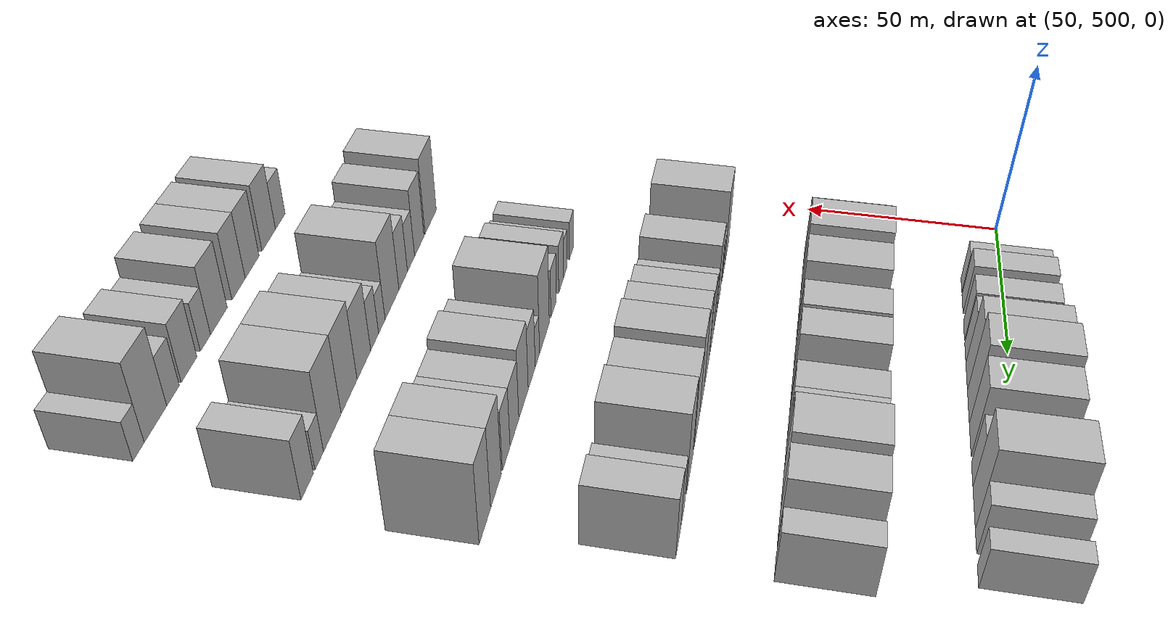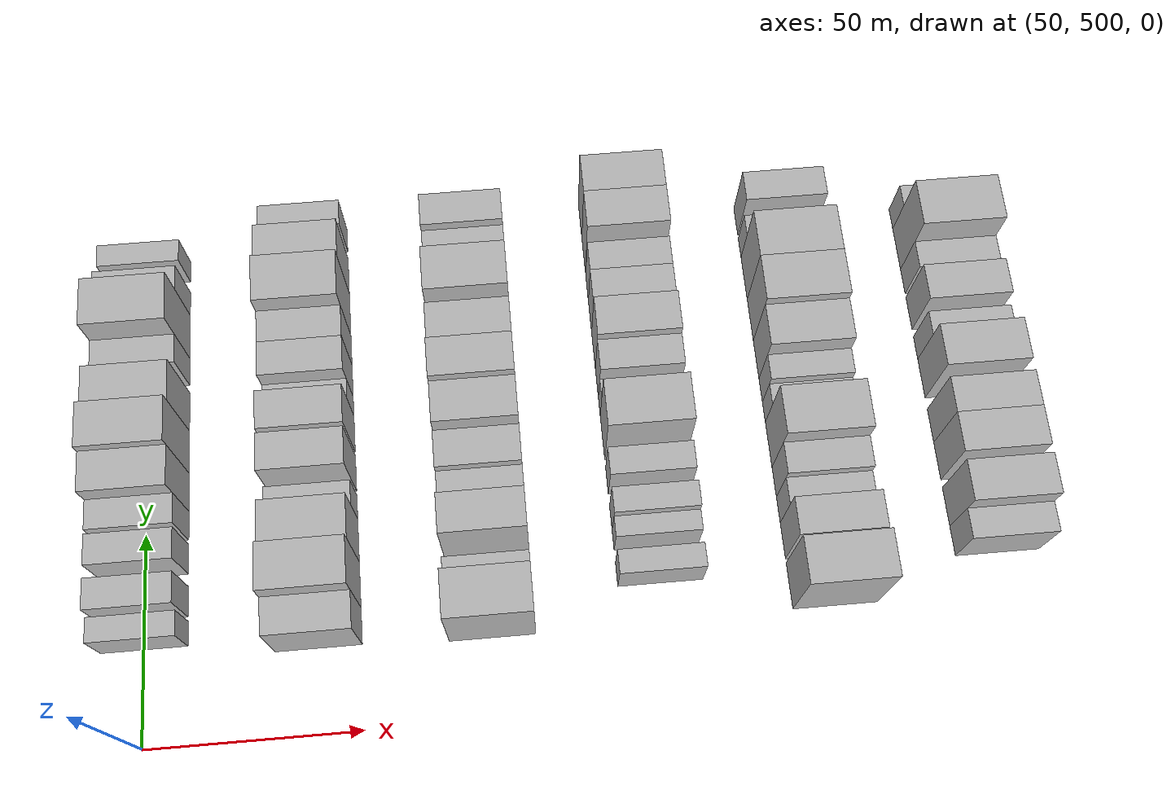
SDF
<sdf version="1.6">
 <world name="default">
  <model name="building_120">
   <static>1</static>
   <pose>50.0000 525.6360 0 0.000000 0.000000 0.000000</pose>
   <link name="link">
    <pose>0 0 6.00 0 0 0</pose>
    <collision name="collision"><geometry><box><size>20.0000 5.7998 12.0000</size></box></geometry></collision>
    <visual name="visual">
     <cast_shadows>0</cast_shadows>
     <geometry><box><size>20.0000 5.7998 12.0000</size></box></geometry>
     <material>
      <script>
       <uri>model://HANNAS_wall/materials/scripts</uri>
       <uri>model://HANNAS_wall/materials/textures</uri>
       <name>vrc/HANNAS_wall</name>
      </script>
     </material>
    </visual>
   </link>
  </model>
  <model name="building_121">
   <static>1</static>
   <pose>50.0000 533.1571 0 0.000000 0.000000 0.000000</pose>
   <link name="link">
    <pose>0 0 7.50 0 0 0</pose>
    <collision name="collision"><geometry><box><size>20.0000 7.2424 15.0000</size></box></geometry></collision>
    <visual name="visual">
     <cast_shadows>0</cast_shadows>
     <geometry><box><size>20.0000 7.2424 15.0000</size></box></geometry>
     <material>
      <script>
       <uri>model://HANNAS_wall/materials/scripts</uri>
       <uri>model://HANNAS_wall/materials/textures</uri>
       <name>vrc/HANNAS_wall</name>
      </script>
     </material>
    </visual>
   </link>
  </model>
  <model name="building_122">
   <static>1</static>
   <pose>50.0000 543.4093 0 0.000000 0.000000 0.000000</pose>
   <link name="link">
    <pose>0 0 7.50 0 0 0</pose>
    <collision name="collision"><geometry><box><size>20.0000 7.2619 15.0000</size></box></geometry></collision>
    <visual name="visual">
     <cast_shadows>0</cast_shadows>
     <geometry><box><size>20.0000 7.2619 15.0000</size></box></geometry>
     <material>
      <script>
       <uri>model://HANNAS_wall/materials/scripts</uri>
       <uri>model://HANNAS_wall/materials/textures</uri>
       <name>vrc/HANNAS_wall</name>
      </script>
     </material>
    </visual>
   </link>
  </model>
  <model name="building_123">
   <static>1</static>
   <pose>50.0000 551.6006 0 0.000000 0.000000 0.000000</pose>
   <link name="link">
    <pose>0 0 7.50 0 0 0</pose>
    <collision name="collision"><geometry><box><size>20.0000 7.1207 15.0000</size></box></geometry></collision>
    <visual name="visual">
     <cast_shadows>0</cast_shadows>
     <geometry><box><size>20.0000 7.1207 15.0000</size></box></geometry>
     <material>
      <script>
       <uri>model://HANNAS_wall/materials/scripts</uri>
       <uri>model://HANNAS_wall/materials/textures</uri>
       <name>vrc/HANNAS_wall</name>
      </script>
     </material>
    </visual>
   </link>
  </model>
  <model name="building_124">
   <static>1</static>
   <pose>50.0000 559.9631 0 0.000000 0.000000 0.000000</pose>
   <link name="link">
    <pose>0 0 10.50 0 0 0</pose>
    <collision name="collision"><geometry><box><size>20.0000 9.6043 21.0000</size></box></geometry></collision>
    <visual name="visual">
     <cast_shadows>0</cast_shadows>
     <geometry><box><size>20.0000 9.6043 21.0000</size></box></geometry>
     <material>
      <script>
       <uri>model://HANNAS_wall/materials/scripts</uri>
       <uri>model://HANNAS_wall/materials/textures</uri>
       <name>vrc/HANNAS_wall</name>
      </script>
     </material>
    </visual>
   </link>
  </model>
  <model name="building_125">
   <static>1</static>
   <pose>50.0000 570.2019 0 0.000000 0.000000 0.000000</pose>
   <link name="link">
    <pose>0 0 12.00 0 0 0</pose>
    <collision name="collision"><geometry><box><size>20.0000 10.8734 24.0000</size></box></geometry></collision>
    <visual name="visual">
     <cast_shadows>0</cast_shadows>
     <geometry><box><size>20.0000 10.8734 24.0000</size></box></geometry>
     <material>
      <script>
       <uri>model://HANNAS_wall/materials/scripts</uri>
       <uri>model://HANNAS_wall/materials/textures</uri>
       <name>vrc/HANNAS_wall</name>
      </script>
     </material>
    </visual>
   </link>
  </model>
  <model name="building_126">
   <static>1</static>
   <pose>50.0000 580.6736 0 0.000000 0.000000 0.000000</pose>
   <link name="link">
    <pose>0 0 10.50 0 0 0</pose>
    <collision name="collision"><geometry><box><size>20.0000 10.0700 21.0000</size></box></geometry></collision>
    <visual name="visual">
     <cast_shadows>0</cast_shadows>
     <geometry><box><size>20.0000 10.0700 21.0000</size></box></geometry>
     <material>
      <script>
       <uri>model://HANNAS_wall/materials/scripts</uri>
       <uri>model://HANNAS_wall/materials/textures</uri>
       <name>vrc/HANNAS_wall</name>
      </script>
     </material>
    </visual>
   </link>
  </model>
  <model name="building_127">
   <static>1</static>
   <pose>50.0000 591.2926 0 0.000000 0.000000 0.000000</pose>
   <link name="link">
    <pose>0 0 7.50 0 0 0</pose>
    <collision name="collision"><geometry><box><size>20.0000 7.1679 15.0000</size></box></geometry></collision>
    <visual name="visual">
     <cast_shadows>0</cast_shadows>
     <geometry><box><size>20.0000 7.1679 15.0000</size></box></geometry>
     <material>
      <script>
       <uri>model://HANNAS_wall/materials/scripts</uri>
       <uri>model://HANNAS_wall/materials/textures</uri>
       <name>vrc/HANNAS_wall</name>
      </script>
     </material>
    </visual>
   </link>
  </model>
  <model name="building_128">
   <static>1</static>
   <pose>50.0000 600.7836 0 0.000000 0.000000 0.000000</pose>
   <link name="link">
    <pose>0 0 12.00 0 0 0</pose>
    <collision name="collision"><geometry><box><size>20.0000 11.8140 24.0000</size></box></geometry></collision>
    <visual name="visual">
     <cast_shadows>0</cast_shadows>
     <geometry><box><size>20.0000 11.8140 24.0000</size></box></geometry>
     <material>
      <script>
       <uri>model://HANNAS_wall/materials/scripts</uri>
       <uri>model://HANNAS_wall/materials/textures</uri>
       <name>vrc/HANNAS_wall</name>
      </script>
     </material>
    </visual>
   </link>
  </model>
  <model name="building_129">
   <static>1</static>
   <pose>50.0000 609.8811 0 0.000000 0.000000 0.000000</pose>
   <link name="link">
    <pose>0 0 7.50 0 0 0</pose>
    <collision name="collision"><geometry><box><size>20.0000 6.3809 15.0000</size></box></geometry></collision>
    <visual name="visual">
     <cast_shadows>0</cast_shadows>
     <geometry><box><size>20.0000 6.3809 15.0000</size></box></geometry>
     <material>
      <script>
       <uri>model://HANNAS_wall/materials/scripts</uri>
       <uri>model://HANNAS_wall/materials/textures</uri>
       <name>vrc/HANNAS_wall</name>
      </script>
     </material>
    </visual>
   </link>
  </model>
  <model name="building_130">
   <static>1</static>
   <pose>50.0000 618.9133 0 0.000000 0.000000 0.000000</pose>
   <link name="link">
    <pose>0 0 6.00 0 0 0</pose>
    <collision name="collision"><geometry><box><size>20.0000 5.6835 12.0000</size></box></geometry></collision>
    <visual name="visual">
     <cast_shadows>0</cast_shadows>
     <geometry><box><size>20.0000 5.6835 12.0000</size></box></geometry>
     <material>
      <script>
       <uri>model://HANNAS_wall/materials/scripts</uri>
       <uri>model://HANNAS_wall/materials/textures</uri>
       <name>vrc/HANNAS_wall</name>
      </script>
     </material>
    </visual>
   </link>
  </model>
  <model name="building_257">
   <static>1</static>
   <pose>90.0000 524.0116 0 0.000000 0.000000 0.000000</pose>
   <link name="link">
    <pose>0 0 9.00 0 0 0</pose>
    <collision name="collision"><geometry><box><size>20.0000 8.6632 18.0000</size></box></geometry></collision>
    <visual name="visual">
     <cast_shadows>0</cast_shadows>
     <geometry><box><size>20.0000 8.6632 18.0000</size></box></geometry>
     <material>
      <script>
       <uri>model://HANNAS_wall/materials/scripts</uri>
       <uri>model://HANNAS_wall/materials/textures</uri>
       <name>vrc/HANNAS_wall</name>
      </script>
     </material>
    </visual>
   </link>
  </model>
  <model name="building_258">
   <static>1</static>
   <pose>90.0000 533.8277 0 0.000000 0.000000 0.000000</pose>
   <link name="link">
    <pose>0 0 12.00 0 0 0</pose>
    <collision name="collision"><geometry><box><size>20.0000 10.9690 24.0000</size></box></geometry></collision>
    <visual name="visual">
     <cast_shadows>0</cast_shadows>
     <geometry><box><size>20.0000 10.9690 24.0000</size></box></geometry>
     <material>
      <script>
       <uri>model://HANNAS_wall/materials/scripts</uri>
       <uri>model://HANNAS_wall/materials/textures</uri>
       <name>vrc/HANNAS_wall</name>
      </script>
     </material>
    </visual>
   </link>
  </model>
  <model name="building_259">
   <static>1</static>
   <pose>90.0000 544.5603 0 0.000000 0.000000 0.000000</pose>
   <link name="link">
    <pose>0 0 10.50 0 0 0</pose>
    <collision name="collision"><geometry><box><size>20.0000 10.4961 21.0000</size></box></geometry></collision>
    <visual name="visual">
     <cast_shadows>0</cast_shadows>
     <geometry><box><size>20.0000 10.4961 21.0000</size></box></geometry>
     <material>
      <script>
       <uri>model://HANNAS_wall/materials/scripts</uri>
       <uri>model://HANNAS_wall/materials/textures</uri>
       <name>vrc/HANNAS_wall</name>
      </script>
     </material>
    </visual>
   </link>
  </model>
  <model name="building_260">
   <static>1</static>
   <pose>90.0000 552.7948 0 0.000000 0.000000 0.000000</pose>
   <link name="link">
    <pose>0 0 6.00 0 0 0</pose>
    <collision name="collision"><geometry><box><size>20.0000 5.9730 12.0000</size></box></geometry></collision>
    <visual name="visual">
     <cast_shadows>0</cast_shadows>
     <geometry><box><size>20.0000 5.9730 12.0000</size></box></geometry>
     <material>
      <script>
       <uri>model://HANNAS_wall/materials/scripts</uri>
       <uri>model://HANNAS_wall/materials/textures</uri>
       <name>vrc/HANNAS_wall</name>
      </script>
     </material>
    </visual>
   </link>
  </model>
  <model name="building_261">
   <static>1</static>
   <pose>90.0000 561.2911 0 0.000000 0.000000 0.000000</pose>
   <link name="link">
    <pose>0 0 10.50 0 0 0</pose>
    <collision name="collision"><geometry><box><size>20.0000 9.0195 21.0000</size></box></geometry></collision>
    <visual name="visual">
     <cast_shadows>0</cast_shadows>
     <geometry><box><size>20.0000 9.0195 21.0000</size></box></geometry>
     <material>
      <script>
       <uri>model://HANNAS_wall/materials/scripts</uri>
       <uri>model://HANNAS_wall/materials/textures</uri>
       <name>vrc/HANNAS_wall</name>
      </script>
     </material>
    </visual>
   </link>
  </model>
  <model name="building_262">
   <static>1</static>
   <pose>90.0000 571.4587 0 0.000000 0.000000 0.000000</pose>
   <link name="link">
    <pose>0 0 10.50 0 0 0</pose>
    <collision name="collision"><geometry><box><size>20.0000 9.3157 21.0000</size></box></geometry></collision>
    <visual name="visual">
     <cast_shadows>0</cast_shadows>
     <geometry><box><size>20.0000 9.3157 21.0000</size></box></geometry>
     <material>
      <script>
       <uri>model://HANNAS_wall/materials/scripts</uri>
       <uri>model://HANNAS_wall/materials/textures</uri>
       <name>vrc/HANNAS_wall</name>
      </script>
     </material>
    </visual>
   </link>
  </model>
  <model name="building_263">
   <static>1</static>
   <pose>90.0000 578.6727 0 0.000000 0.000000 0.000000</pose>
   <link name="link">
    <pose>0 0 6.00 0 0 0</pose>
    <collision name="collision"><geometry><box><size>20.0000 5.1123 12.0000</size></box></geometry></collision>
    <visual name="visual">
     <cast_shadows>0</cast_shadows>
     <geometry><box><size>20.0000 5.1123 12.0000</size></box></geometry>
     <material>
      <script>
       <uri>model://HANNAS_wall/materials/scripts</uri>
       <uri>model://HANNAS_wall/materials/textures</uri>
       <name>vrc/HANNAS_wall</name>
      </script>
     </material>
    </visual>
   </link>
  </model>
  <model name="building_264">
   <static>1</static>
   <pose>90.0000 585.4815 0 0.000000 0.000000 0.000000</pose>
   <link name="link">
    <pose>0 0 9.00 0 0 0</pose>
    <collision name="collision"><geometry><box><size>20.0000 8.5053 18.0000</size></box></geometry></collision>
    <visual name="visual">
     <cast_shadows>0</cast_shadows>
     <geometry><box><size>20.0000 8.5053 18.0000</size></box></geometry>
     <material>
      <script>
       <uri>model://HANNAS_wall/materials/scripts</uri>
       <uri>model://HANNAS_wall/materials/textures</uri>
       <name>vrc/HANNAS_wall</name>
      </script>
     </material>
    </visual>
   </link>
  </model>
  <model name="building_265">
   <static>1</static>
   <pose>90.0000 593.7122 0 0.000000 0.000000 0.000000</pose>
   <link name="link">
    <pose>0 0 9.00 0 0 0</pose>
    <collision name="collision"><geometry><box><size>20.0000 7.9563 18.0000</size></box></geometry></collision>
    <visual name="visual">
     <cast_shadows>0</cast_shadows>
     <geometry><box><size>20.0000 7.9563 18.0000</size></box></geometry>
     <material>
      <script>
       <uri>model://HANNAS_wall/materials/scripts</uri>
       <uri>model://HANNAS_wall/materials/textures</uri>
       <name>vrc/HANNAS_wall</name>
      </script>
     </material>
    </visual>
   </link>
  </model>
  <model name="building_266">
   <static>1</static>
   <pose>90.0000 603.5068 0 0.000000 0.000000 0.000000</pose>
   <link name="link">
    <pose>0 0 12.00 0 0 0</pose>
    <collision name="collision"><geometry><box><size>20.0000 11.6327 24.0000</size></box></geometry></collision>
    <visual name="visual">
     <cast_shadows>0</cast_shadows>
     <geometry><box><size>20.0000 11.6327 24.0000</size></box></geometry>
     <material>
      <script>
       <uri>model://HANNAS_wall/materials/scripts</uri>
       <uri>model://HANNAS_wall/materials/textures</uri>
       <name>vrc/HANNAS_wall</name>
      </script>
     </material>
    </visual>
   </link>
  </model>
  <model name="building_267">
   <static>1</static>
   <pose>90.0000 614.2384 0 0.000000 0.000000 0.000000</pose>
   <link name="link">
    <pose>0 0 10.50 0 0 0</pose>
    <collision name="collision"><geometry><box><size>20.0000 9.8306 21.0000</size></box></geometry></collision>
    <visual name="visual">
     <cast_shadows>0</cast_shadows>
     <geometry><box><size>20.0000 9.8306 21.0000</size></box></geometry>
     <material>
      <script>
       <uri>model://HANNAS_wall/materials/scripts</uri>
       <uri>model://HANNAS_wall/materials/textures</uri>
       <name>vrc/HANNAS_wall</name>
      </script>
     </material>
    </visual>
   </link>
  </model>
  <model name="building_268">
   <static>1</static>
   <pose>90.0000 624.4491 0 0.000000 0.000000 0.000000</pose>
   <link name="link">
    <pose>0 0 7.50 0 0 0</pose>
    <collision name="collision"><geometry><box><size>20.0000 6.5906 15.0000</size></box></geometry></collision>
    <visual name="visual">
     <cast_shadows>0</cast_shadows>
     <geometry><box><size>20.0000 6.5906 15.0000</size></box></geometry>
     <material>
      <script>
       <uri>model://HANNAS_wall/materials/scripts</uri>
       <uri>model://HANNAS_wall/materials/textures</uri>
       <name>vrc/HANNAS_wall</name>
      </script>
     </material>
    </visual>
   </link>
  </model>
  <model name="building_398">
   <static>1</static>
   <pose>130.0000 524.2824 0 0.000000 0.000000 0.000000</pose>
   <link name="link">
    <pose>0 0 12.00 0 0 0</pose>
    <collision name="collision"><geometry><box><size>20.0000 11.1559 24.0000</size></box></geometry></collision>
    <visual name="visual">
     <cast_shadows>0</cast_shadows>
     <geometry><box><size>20.0000 11.1559 24.0000</size></box></geometry>
     <material>
      <script>
       <uri>model://HANNAS_wall/materials/scripts</uri>
       <uri>model://HANNAS_wall/materials/textures</uri>
       <name>vrc/HANNAS_wall</name>
      </script>
     </material>
    </visual>
   </link>
  </model>
  <model name="building_399">
   <static>1</static>
   <pose>130.0000 532.7590 0 0.000000 0.000000 0.000000</pose>
   <link name="link">
    <pose>0 0 6.00 0 0 0</pose>
    <collision name="collision"><geometry><box><size>20.0000 5.7972 12.0000</size></box></geometry></collision>
    <visual name="visual">
     <cast_shadows>0</cast_shadows>
     <geometry><box><size>20.0000 5.7972 12.0000</size></box></geometry>
     <material>
      <script>
       <uri>model://HANNAS_wall/materials/scripts</uri>
       <uri>model://HANNAS_wall/materials/textures</uri>
       <name>vrc/HANNAS_wall</name>
      </script>
     </material>
    </visual>
   </link>
  </model>
  <model name="building_400">
   <static>1</static>
   <pose>130.0000 543.3756 0 0.000000 0.000000 0.000000</pose>
   <link name="link">
    <pose>0 0 10.50 0 0 0</pose>
    <collision name="collision"><geometry><box><size>20.0000 9.4361 21.0000</size></box></geometry></collision>
    <visual name="visual">
     <cast_shadows>0</cast_shadows>
     <geometry><box><size>20.0000 9.4361 21.0000</size></box></geometry>
     <material>
      <script>
       <uri>model://HANNAS_wall/materials/scripts</uri>
       <uri>model://HANNAS_wall/materials/textures</uri>
       <name>vrc/HANNAS_wall</name>
      </script>
     </material>
    </visual>
   </link>
  </model>
  <model name="building_401">
   <static>1</static>
   <pose>130.0000 552.1238 0 0.000000 0.000000 0.000000</pose>
   <link name="link">
    <pose>0 0 7.50 0 0 0</pose>
    <collision name="collision"><geometry><box><size>20.0000 6.0603 15.0000</size></box></geometry></collision>
    <visual name="visual">
     <cast_shadows>0</cast_shadows>
     <geometry><box><size>20.0000 6.0603 15.0000</size></box></geometry>
     <material>
      <script>
       <uri>model://HANNAS_wall/materials/scripts</uri>
       <uri>model://HANNAS_wall/materials/textures</uri>
       <name>vrc/HANNAS_wall</name>
      </script>
     </material>
    </visual>
   </link>
  </model>
  <model name="building_402">
   <static>1</static>
   <pose>130.0000 559.5986 0 0.000000 0.000000 0.000000</pose>
   <link name="link">
    <pose>0 0 9.00 0 0 0</pose>
    <collision name="collision"><geometry><box><size>20.0000 8.8893 18.0000</size></box></geometry></collision>
    <visual name="visual">
     <cast_shadows>0</cast_shadows>
     <geometry><box><size>20.0000 8.8893 18.0000</size></box></geometry>
     <material>
      <script>
       <uri>model://HANNAS_wall/materials/scripts</uri>
       <uri>model://HANNAS_wall/materials/textures</uri>
       <name>vrc/HANNAS_wall</name>
      </script>
     </material>
    </visual>
   </link>
  </model>
  <model name="building_403">
   <static>1</static>
   <pose>130.0000 570.0678 0 0.000000 0.000000 0.000000</pose>
   <link name="link">
    <pose>0 0 10.50 0 0 0</pose>
    <collision name="collision"><geometry><box><size>20.0000 10.0492 21.0000</size></box></geometry></collision>
    <visual name="visual">
     <cast_shadows>0</cast_shadows>
     <geometry><box><size>20.0000 10.0492 21.0000</size></box></geometry>
     <material>
      <script>
       <uri>model://HANNAS_wall/materials/scripts</uri>
       <uri>model://HANNAS_wall/materials/textures</uri>
       <name>vrc/HANNAS_wall</name>
      </script>
     </material>
    </visual>
   </link>
  </model>
  <model name="building_404">
   <static>1</static>
   <pose>130.0000 579.9050 0 0.000000 0.000000 0.000000</pose>
   <link name="link">
    <pose>0 0 12.00 0 0 0</pose>
    <collision name="collision"><geometry><box><size>20.0000 9.6251 24.0000</size></box></geometry></collision>
    <visual name="visual">
     <cast_shadows>0</cast_shadows>
     <geometry><box><size>20.0000 9.6251 24.0000</size></box></geometry>
     <material>
      <script>
       <uri>model://HANNAS_wall/materials/scripts</uri>
       <uri>model://HANNAS_wall/materials/textures</uri>
       <name>vrc/HANNAS_wall</name>
      </script>
     </material>
    </visual>
   </link>
  </model>
  <model name="building_405">
   <static>1</static>
   <pose>130.0000 589.9073 0 0.000000 0.000000 0.000000</pose>
   <link name="link">
    <pose>0 0 10.50 0 0 0</pose>
    <collision name="collision"><geometry><box><size>20.0000 10.3795 21.0000</size></box></geometry></collision>
    <visual name="visual">
     <cast_shadows>0</cast_shadows>
     <geometry><box><size>20.0000 10.3795 21.0000</size></box></geometry>
     <material>
      <script>
       <uri>model://HANNAS_wall/materials/scripts</uri>
       <uri>model://HANNAS_wall/materials/textures</uri>
       <name>vrc/HANNAS_wall</name>
      </script>
     </material>
    </visual>
   </link>
  </model>
  <model name="building_406">
   <static>1</static>
   <pose>130.0000 602.7180 0 0.000000 0.000000 0.000000</pose>
   <link name="link">
    <pose>0 0 12.00 0 0 0</pose>
    <collision name="collision"><geometry><box><size>20.0000 11.2420 24.0000</size></box></geometry></collision>
    <visual name="visual">
     <cast_shadows>0</cast_shadows>
     <geometry><box><size>20.0000 11.2420 24.0000</size></box></geometry>
     <material>
      <script>
       <uri>model://HANNAS_wall/materials/scripts</uri>
       <uri>model://HANNAS_wall/materials/textures</uri>
       <name>vrc/HANNAS_wall</name>
      </script>
     </material>
    </visual>
   </link>
  </model>
  <model name="building_407">
   <static>1</static>
   <pose>130.0000 614.3889 0 0.000000 0.000000 0.000000</pose>
   <link name="link">
    <pose>0 0 7.50 0 0 0</pose>
    <collision name="collision"><geometry><box><size>20.0000 6.0997 15.0000</size></box></geometry></collision>
    <visual name="visual">
     <cast_shadows>0</cast_shadows>
     <geometry><box><size>20.0000 6.0997 15.0000</size></box></geometry>
     <material>
      <script>
       <uri>model://HANNAS_wall/materials/scripts</uri>
       <uri>model://HANNAS_wall/materials/textures</uri>
       <name>vrc/HANNAS_wall</name>
      </script>
     </material>
    </visual>
   </link>
  </model>
  <model name="building_408">
   <static>1</static>
   <pose>130.0000 621.6252 0 0.000000 0.000000 0.000000</pose>
   <link name="link">
    <pose>0 0 9.00 0 0 0</pose>
    <collision name="collision"><geometry><box><size>20.0000 8.3729 18.0000</size></box></geometry></collision>
    <visual name="visual">
     <cast_shadows>0</cast_shadows>
     <geometry><box><size>20.0000 8.3729 18.0000</size></box></geometry>
     <material>
      <script>
       <uri>model://HANNAS_wall/materials/scripts</uri>
       <uri>model://HANNAS_wall/materials/textures</uri>
       <name>vrc/HANNAS_wall</name>
      </script>
     </material>
    </visual>
   </link>
  </model>
  <model name="building_537">
   <static>1</static>
   <pose>170.0000 531.0983 0 0.000000 0.000000 0.000000</pose>
   <link name="link">
    <pose>0 0 6.00 0 0 0</pose>
    <collision name="collision"><geometry><box><size>20.0000 5.6921 12.0000</size></box></geometry></collision>
    <visual name="visual">
     <cast_shadows>0</cast_shadows>
     <geometry><box><size>20.0000 5.6921 12.0000</size></box></geometry>
     <material>
      <script>
       <uri>model://HANNAS_wall/materials/scripts</uri>
       <uri>model://HANNAS_wall/materials/textures</uri>
       <name>vrc/HANNAS_wall</name>
      </script>
     </material>
    </visual>
   </link>
  </model>
  <model name="building_538">
   <static>1</static>
   <pose>170.0000 539.3875 0 0.000000 0.000000 0.000000</pose>
   <link name="link">
    <pose>0 0 6.00 0 0 0</pose>
    <collision name="collision"><geometry><box><size>20.0000 4.8865 12.0000</size></box></geometry></collision>
    <visual name="visual">
     <cast_shadows>0</cast_shadows>
     <geometry><box><size>20.0000 4.8865 12.0000</size></box></geometry>
     <material>
      <script>
       <uri>model://HANNAS_wall/materials/scripts</uri>
       <uri>model://HANNAS_wall/materials/textures</uri>
       <name>vrc/HANNAS_wall</name>
      </script>
     </material>
    </visual>
   </link>
  </model>
  <model name="building_539">
   <static>1</static>
   <pose>170.0000 544.8782 0 0.000000 0.000000 0.000000</pose>
   <link name="link">
    <pose>0 0 7.50 0 0 0</pose>
    <collision name="collision"><geometry><box><size>20.0000 6.0950 15.0000</size></box></geometry></collision>
    <visual name="visual">
     <cast_shadows>0</cast_shadows>
     <geometry><box><size>20.0000 6.0950 15.0000</size></box></geometry>
     <material>
      <script>
       <uri>model://HANNAS_wall/materials/scripts</uri>
       <uri>model://HANNAS_wall/materials/textures</uri>
       <name>vrc/HANNAS_wall</name>
      </script>
     </material>
    </visual>
   </link>
  </model>
  <model name="building_540">
   <static>1</static>
   <pose>170.0000 554.2513 0 0.000000 0.000000 0.000000</pose>
   <link name="link">
    <pose>0 0 7.50 0 0 0</pose>
    <collision name="collision"><geometry><box><size>20.0000 6.6512 15.0000</size></box></geometry></collision>
    <visual name="visual">
     <cast_shadows>0</cast_shadows>
     <geometry><box><size>20.0000 6.6512 15.0000</size></box></geometry>
     <material>
      <script>
       <uri>model://HANNAS_wall/materials/scripts</uri>
       <uri>model://HANNAS_wall/materials/textures</uri>
       <name>vrc/HANNAS_wall</name>
      </script>
     </material>
    </visual>
   </link>
  </model>
  <model name="building_541">
   <static>1</static>
   <pose>170.0000 565.2590 0 0.000000 0.000000 0.000000</pose>
   <link name="link">
    <pose>0 0 12.00 0 0 0</pose>
    <collision name="collision"><geometry><box><size>20.0000 11.3643 24.0000</size></box></geometry></collision>
    <visual name="visual">
     <cast_shadows>0</cast_shadows>
     <geometry><box><size>20.0000 11.3643 24.0000</size></box></geometry>
     <material>
      <script>
       <uri>model://HANNAS_wall/materials/scripts</uri>
       <uri>model://HANNAS_wall/materials/textures</uri>
       <name>vrc/HANNAS_wall</name>
      </script>
     </material>
    </visual>
   </link>
  </model>
  <model name="building_542">
   <static>1</static>
   <pose>170.0000 573.3591 0 0.000000 0.000000 0.000000</pose>
   <link name="link">
    <pose>0 0 6.00 0 0 0</pose>
    <collision name="collision"><geometry><box><size>20.0000 4.8358 12.0000</size></box></geometry></collision>
    <visual name="visual">
     <cast_shadows>0</cast_shadows>
     <geometry><box><size>20.0000 4.8358 12.0000</size></box></geometry>
     <material>
      <script>
       <uri>model://HANNAS_wall/materials/scripts</uri>
       <uri>model://HANNAS_wall/materials/textures</uri>
       <name>vrc/HANNAS_wall</name>
      </script>
     </material>
    </visual>
   </link>
  </model>
  <model name="building_543">
   <static>1</static>
   <pose>170.0000 579.6017 0 0.000000 0.000000 0.000000</pose>
   <link name="link">
    <pose>0 0 9.00 0 0 0</pose>
    <collision name="collision"><geometry><box><size>20.0000 7.6495 18.0000</size></box></geometry></collision>
    <visual name="visual">
     <cast_shadows>0</cast_shadows>
     <geometry><box><size>20.0000 7.6495 18.0000</size></box></geometry>
     <material>
      <script>
       <uri>model://HANNAS_wall/materials/scripts</uri>
       <uri>model://HANNAS_wall/materials/textures</uri>
       <name>vrc/HANNAS_wall</name>
      </script>
     </material>
    </visual>
   </link>
  </model>
  <model name="building_544">
   <static>1</static>
   <pose>170.0000 588.2946 0 0.000000 0.000000 0.000000</pose>
   <link name="link">
    <pose>0 0 10.50 0 0 0</pose>
    <collision name="collision"><geometry><box><size>20.0000 9.7362 21.0000</size></box></geometry></collision>
    <visual name="visual">
     <cast_shadows>0</cast_shadows>
     <geometry><box><size>20.0000 9.7362 21.0000</size></box></geometry>
     <material>
      <script>
       <uri>model://HANNAS_wall/materials/scripts</uri>
       <uri>model://HANNAS_wall/materials/textures</uri>
       <name>vrc/HANNAS_wall</name>
      </script>
     </material>
    </visual>
   </link>
  </model>
  <model name="building_545">
   <static>1</static>
   <pose>170.0000 597.5183 0 0.000000 0.000000 0.000000</pose>
   <link name="link">
    <pose>0 0 9.00 0 0 0</pose>
    <collision name="collision"><geometry><box><size>20.0000 8.7113 18.0000</size></box></geometry></collision>
    <visual name="visual">
     <cast_shadows>0</cast_shadows>
     <geometry><box><size>20.0000 8.7113 18.0000</size></box></geometry>
     <material>
      <script>
       <uri>model://HANNAS_wall/materials/scripts</uri>
       <uri>model://HANNAS_wall/materials/textures</uri>
       <name>vrc/HANNAS_wall</name>
      </script>
     </material>
    </visual>
   </link>
  </model>
  <model name="building_546">
   <static>1</static>
   <pose>170.0000 605.5359 0 0.000000 0.000000 0.000000</pose>
   <link name="link">
    <pose>0 0 9.00 0 0 0</pose>
    <collision name="collision"><geometry><box><size>20.0000 7.3240 18.0000</size></box></geometry></collision>
    <visual name="visual">
     <cast_shadows>0</cast_shadows>
     <geometry><box><size>20.0000 7.3240 18.0000</size></box></geometry>
     <material>
      <script>
       <uri>model://HANNAS_wall/materials/scripts</uri>
       <uri>model://HANNAS_wall/materials/textures</uri>
       <name>vrc/HANNAS_wall</name>
      </script>
     </material>
    </visual>
   </link>
  </model>
  <model name="building_547">
   <static>1</static>
   <pose>170.0000 615.0454 0 0.000000 0.000000 0.000000</pose>
   <link name="link">
    <pose>0 0 12.00 0 0 0</pose>
    <collision name="collision"><geometry><box><size>20.0000 9.6948 24.0000</size></box></geometry></collision>
    <visual name="visual">
     <cast_shadows>0</cast_shadows>
     <geometry><box><size>20.0000 9.6948 24.0000</size></box></geometry>
     <material>
      <script>
       <uri>model://HANNAS_wall/materials/scripts</uri>
       <uri>model://HANNAS_wall/materials/textures</uri>
       <name>vrc/HANNAS_wall</name>
      </script>
     </material>
    </visual>
   </link>
  </model>
  <model name="building_548">
   <static>1</static>
   <pose>170.0000 624.8203 0 0.000000 0.000000 0.000000</pose>
   <link name="link">
    <pose>0 0 12.00 0 0 0</pose>
    <collision name="collision"><geometry><box><size>20.0000 9.8550 24.0000</size></box></geometry></collision>
    <visual name="visual">
     <cast_shadows>0</cast_shadows>
     <geometry><box><size>20.0000 9.8550 24.0000</size></box></geometry>
     <material>
      <script>
       <uri>model://HANNAS_wall/materials/scripts</uri>
       <uri>model://HANNAS_wall/materials/textures</uri>
       <name>vrc/HANNAS_wall</name>
      </script>
     </material>
    </visual>
   </link>
  </model>
  <model name="building_679">
   <static>1</static>
   <pose>210.0000 524.9511 0 0.000000 0.000000 0.000000</pose>
   <link name="link">
    <pose>0 0 12.00 0 0 0</pose>
    <collision name="collision"><geometry><box><size>20.0000 11.0271 24.0000</size></box></geometry></collision>
    <visual name="visual">
     <cast_shadows>0</cast_shadows>
     <geometry><box><size>20.0000 11.0271 24.0000</size></box></geometry>
     <material>
      <script>
       <uri>model://HANNAS_wall/materials/scripts</uri>
       <uri>model://HANNAS_wall/materials/textures</uri>
       <name>vrc/HANNAS_wall</name>
      </script>
     </material>
    </visual>
   </link>
  </model>
  <model name="building_680">
   <static>1</static>
   <pose>210.0000 535.8602 0 0.000000 0.000000 0.000000</pose>
   <link name="link">
    <pose>0 0 10.50 0 0 0</pose>
    <collision name="collision"><geometry><box><size>20.0000 8.7910 21.0000</size></box></geometry></collision>
    <visual name="visual">
     <cast_shadows>0</cast_shadows>
     <geometry><box><size>20.0000 8.7910 21.0000</size></box></geometry>
     <material>
      <script>
       <uri>model://HANNAS_wall/materials/scripts</uri>
       <uri>model://HANNAS_wall/materials/textures</uri>
       <name>vrc/HANNAS_wall</name>
      </script>
     </material>
    </visual>
   </link>
  </model>
  <model name="building_681">
   <static>1</static>
   <pose>210.0000 543.5018 0 0.000000 0.000000 0.000000</pose>
   <link name="link">
    <pose>0 0 7.50 0 0 0</pose>
    <collision name="collision"><geometry><box><size>20.0000 6.4921 15.0000</size></box></geometry></collision>
    <visual name="visual">
     <cast_shadows>0</cast_shadows>
     <geometry><box><size>20.0000 6.4921 15.0000</size></box></geometry>
     <material>
      <script>
       <uri>model://HANNAS_wall/materials/scripts</uri>
       <uri>model://HANNAS_wall/materials/textures</uri>
       <name>vrc/HANNAS_wall</name>
      </script>
     </material>
    </visual>
   </link>
  </model>
  <model name="building_682">
   <static>1</static>
   <pose>210.0000 550.4992 0 0.000000 0.000000 0.000000</pose>
   <link name="link">
    <pose>0 0 9.00 0 0 0</pose>
    <collision name="collision"><geometry><box><size>20.0000 7.5028 18.0000</size></box></geometry></collision>
    <visual name="visual">
     <cast_shadows>0</cast_shadows>
     <geometry><box><size>20.0000 7.5028 18.0000</size></box></geometry>
     <material>
      <script>
       <uri>model://HANNAS_wall/materials/scripts</uri>
       <uri>model://HANNAS_wall/materials/textures</uri>
       <name>vrc/HANNAS_wall</name>
      </script>
     </material>
    </visual>
   </link>
  </model>
  <model name="building_683">
   <static>1</static>
   <pose>210.0000 560.0758 0 0.000000 0.000000 0.000000</pose>
   <link name="link">
    <pose>0 0 12.00 0 0 0</pose>
    <collision name="collision"><geometry><box><size>20.0000 11.6503 24.0000</size></box></geometry></collision>
    <visual name="visual">
     <cast_shadows>0</cast_shadows>
     <geometry><box><size>20.0000 11.6503 24.0000</size></box></geometry>
     <material>
      <script>
       <uri>model://HANNAS_wall/materials/scripts</uri>
       <uri>model://HANNAS_wall/materials/textures</uri>
       <name>vrc/HANNAS_wall</name>
      </script>
     </material>
    </visual>
   </link>
  </model>
  <model name="building_684">
   <static>1</static>
   <pose>210.0000 568.5385 0 0.000000 0.000000 0.000000</pose>
   <link name="link">
    <pose>0 0 6.00 0 0 0</pose>
    <collision name="collision"><geometry><box><size>20.0000 5.2750 12.0000</size></box></geometry></collision>
    <visual name="visual">
     <cast_shadows>0</cast_shadows>
     <geometry><box><size>20.0000 5.2750 12.0000</size></box></geometry>
     <material>
      <script>
       <uri>model://HANNAS_wall/materials/scripts</uri>
       <uri>model://HANNAS_wall/materials/textures</uri>
       <name>vrc/HANNAS_wall</name>
      </script>
     </material>
    </visual>
   </link>
  </model>
  <model name="building_685">
   <static>1</static>
   <pose>210.0000 574.3078 0 0.000000 0.000000 0.000000</pose>
   <link name="link">
    <pose>0 0 7.50 0 0 0</pose>
    <collision name="collision"><geometry><box><size>20.0000 6.2637 15.0000</size></box></geometry></collision>
    <visual name="visual">
     <cast_shadows>0</cast_shadows>
     <geometry><box><size>20.0000 6.2637 15.0000</size></box></geometry>
     <material>
      <script>
       <uri>model://HANNAS_wall/materials/scripts</uri>
       <uri>model://HANNAS_wall/materials/textures</uri>
       <name>vrc/HANNAS_wall</name>
      </script>
     </material>
    </visual>
   </link>
  </model>
  <model name="building_686">
   <static>1</static>
   <pose>210.0000 582.5694 0 0.000000 0.000000 0.000000</pose>
   <link name="link">
    <pose>0 0 10.50 0 0 0</pose>
    <collision name="collision"><geometry><box><size>20.0000 10.2594 21.0000</size></box></geometry></collision>
    <visual name="visual">
     <cast_shadows>0</cast_shadows>
     <geometry><box><size>20.0000 10.2594 21.0000</size></box></geometry>
     <material>
      <script>
       <uri>model://HANNAS_wall/materials/scripts</uri>
       <uri>model://HANNAS_wall/materials/textures</uri>
       <name>vrc/HANNAS_wall</name>
      </script>
     </material>
    </visual>
   </link>
  </model>
  <model name="building_687">
   <static>1</static>
   <pose>210.0000 593.4216 0 0.000000 0.000000 0.000000</pose>
   <link name="link">
    <pose>0 0 12.00 0 0 0</pose>
    <collision name="collision"><geometry><box><size>20.0000 11.4450 24.0000</size></box></geometry></collision>
    <visual name="visual">
     <cast_shadows>0</cast_shadows>
     <geometry><box><size>20.0000 11.4450 24.0000</size></box></geometry>
     <material>
      <script>
       <uri>model://HANNAS_wall/materials/scripts</uri>
       <uri>model://HANNAS_wall/materials/textures</uri>
       <name>vrc/HANNAS_wall</name>
      </script>
     </material>
    </visual>
   </link>
  </model>
  <model name="building_688">
   <static>1</static>
   <pose>210.0000 605.0893 0 0.000000 0.000000 0.000000</pose>
   <link name="link">
    <pose>0 0 12.00 0 0 0</pose>
    <collision name="collision"><geometry><box><size>20.0000 11.8905 24.0000</size></box></geometry></collision>
    <visual name="visual">
     <cast_shadows>0</cast_shadows>
     <geometry><box><size>20.0000 11.8905 24.0000</size></box></geometry>
     <material>
      <script>
       <uri>model://HANNAS_wall/materials/scripts</uri>
       <uri>model://HANNAS_wall/materials/textures</uri>
       <name>vrc/HANNAS_wall</name>
      </script>
     </material>
    </visual>
   </link>
  </model>
  <model name="building_689">
   <static>1</static>
   <pose>210.0000 613.7754 0 0.000000 0.000000 0.000000</pose>
   <link name="link">
    <pose>0 0 6.00 0 0 0</pose>
    <collision name="collision"><geometry><box><size>20.0000 5.4817 12.0000</size></box></geometry></collision>
    <visual name="visual">
     <cast_shadows>0</cast_shadows>
     <geometry><box><size>20.0000 5.4817 12.0000</size></box></geometry>
     <material>
      <script>
       <uri>model://HANNAS_wall/materials/scripts</uri>
       <uri>model://HANNAS_wall/materials/textures</uri>
       <name>vrc/HANNAS_wall</name>
      </script>
     </material>
    </visual>
   </link>
  </model>
  <model name="building_690">
   <static>1</static>
   <pose>210.0000 621.3592 0 0.000000 0.000000 0.000000</pose>
   <link name="link">
    <pose>0 0 9.00 0 0 0</pose>
    <collision name="collision"><geometry><box><size>20.0000 7.6859 18.0000</size></box></geometry></collision>
    <visual name="visual">
     <cast_shadows>0</cast_shadows>
     <geometry><box><size>20.0000 7.6859 18.0000</size></box></geometry>
     <material>
      <script>
       <uri>model://HANNAS_wall/materials/scripts</uri>
       <uri>model://HANNAS_wall/materials/textures</uri>
       <name>vrc/HANNAS_wall</name>
      </script>
     </material>
    </visual>
   </link>
  </model>
  <model name="building_815">
   <static>1</static>
   <pose>250.0000 532.3660 0 0.000000 0.000000 0.000000</pose>
   <link name="link">
    <pose>0 0 7.50 0 0 0</pose>
    <collision name="collision"><geometry><box><size>20.0000 7.1652 15.0000</size></box></geometry></collision>
    <visual name="visual">
     <cast_shadows>0</cast_shadows>
     <geometry><box><size>20.0000 7.1652 15.0000</size></box></geometry>
     <material>
      <script>
       <uri>model://HANNAS_wall/materials/scripts</uri>
       <uri>model://HANNAS_wall/materials/textures</uri>
       <name>vrc/HANNAS_wall</name>
      </script>
     </material>
    </visual>
   </link>
  </model>
  <model name="building_816">
   <static>1</static>
   <pose>250.0000 540.8084 0 0.000000 0.000000 0.000000</pose>
   <link name="link">
    <pose>0 0 10.50 0 0 0</pose>
    <collision name="collision"><geometry><box><size>20.0000 9.7196 21.0000</size></box></geometry></collision>
    <visual name="visual">
     <cast_shadows>0</cast_shadows>
     <geometry><box><size>20.0000 9.7196 21.0000</size></box></geometry>
     <material>
      <script>
       <uri>model://HANNAS_wall/materials/scripts</uri>
       <uri>model://HANNAS_wall/materials/textures</uri>
       <name>vrc/HANNAS_wall</name>
      </script>
     </material>
    </visual>
   </link>
  </model>
  <model name="building_817">
   <static>1</static>
   <pose>250.0000 552.4348 0 0.000000 0.000000 0.000000</pose>
   <link name="link">
    <pose>0 0 10.50 0 0 0</pose>
    <collision name="collision"><geometry><box><size>20.0000 9.5333 21.0000</size></box></geometry></collision>
    <visual name="visual">
     <cast_shadows>0</cast_shadows>
     <geometry><box><size>20.0000 9.5333 21.0000</size></box></geometry>
     <material>
      <script>
       <uri>model://HANNAS_wall/materials/scripts</uri>
       <uri>model://HANNAS_wall/materials/textures</uri>
       <name>vrc/HANNAS_wall</name>
      </script>
     </material>
    </visual>
   </link>
  </model>
  <model name="building_818">
   <static>1</static>
   <pose>250.0000 561.5533 0 0.000000 0.000000 0.000000</pose>
   <link name="link">
    <pose>0 0 10.50 0 0 0</pose>
    <collision name="collision"><geometry><box><size>20.0000 8.7036 21.0000</size></box></geometry></collision>
    <visual name="visual">
     <cast_shadows>0</cast_shadows>
     <geometry><box><size>20.0000 8.7036 21.0000</size></box></geometry>
     <material>
      <script>
       <uri>model://HANNAS_wall/materials/scripts</uri>
       <uri>model://HANNAS_wall/materials/textures</uri>
       <name>vrc/HANNAS_wall</name>
      </script>
     </material>
    </visual>
   </link>
  </model>
  <model name="building_819">
   <static>1</static>
   <pose>250.0000 574.0804 0 0.000000 0.000000 0.000000</pose>
   <link name="link">
    <pose>0 0 10.50 0 0 0</pose>
    <collision name="collision"><geometry><box><size>20.0000 10.3507 21.0000</size></box></geometry></collision>
    <visual name="visual">
     <cast_shadows>0</cast_shadows>
     <geometry><box><size>20.0000 10.3507 21.0000</size></box></geometry>
     <material>
      <script>
       <uri>model://HANNAS_wall/materials/scripts</uri>
       <uri>model://HANNAS_wall/materials/textures</uri>
       <name>vrc/HANNAS_wall</name>
      </script>
     </material>
    </visual>
   </link>
  </model>
  <model name="building_820">
   <static>1</static>
   <pose>250.0000 582.3009 0 0.000000 0.000000 0.000000</pose>
   <link name="link">
    <pose>0 0 7.50 0 0 0</pose>
    <collision name="collision"><geometry><box><size>20.0000 6.0903 15.0000</size></box></geometry></collision>
    <visual name="visual">
     <cast_shadows>0</cast_shadows>
     <geometry><box><size>20.0000 6.0903 15.0000</size></box></geometry>
     <material>
      <script>
       <uri>model://HANNAS_wall/materials/scripts</uri>
       <uri>model://HANNAS_wall/materials/textures</uri>
       <name>vrc/HANNAS_wall</name>
      </script>
     </material>
    </visual>
   </link>
  </model>
  <model name="building_821">
   <static>1</static>
   <pose>250.0000 591.8120 0 0.000000 0.000000 0.000000</pose>
   <link name="link">
    <pose>0 0 9.00 0 0 0</pose>
    <collision name="collision"><geometry><box><size>20.0000 8.9320 18.0000</size></box></geometry></collision>
    <visual name="visual">
     <cast_shadows>0</cast_shadows>
     <geometry><box><size>20.0000 8.9320 18.0000</size></box></geometry>
     <material>
      <script>
       <uri>model://HANNAS_wall/materials/scripts</uri>
       <uri>model://HANNAS_wall/materials/textures</uri>
       <name>vrc/HANNAS_wall</name>
      </script>
     </material>
    </visual>
   </link>
  </model>
  <model name="building_822">
   <static>1</static>
   <pose>250.0000 600.7108 0 0.000000 0.000000 0.000000</pose>
   <link name="link">
    <pose>0 0 7.50 0 0 0</pose>
    <collision name="collision"><geometry><box><size>20.0000 6.8656 15.0000</size></box></geometry></collision>
    <visual name="visual">
     <cast_shadows>0</cast_shadows>
     <geometry><box><size>20.0000 6.8656 15.0000</size></box></geometry>
     <material>
      <script>
       <uri>model://HANNAS_wall/materials/scripts</uri>
       <uri>model://HANNAS_wall/materials/textures</uri>
       <name>vrc/HANNAS_wall</name>
      </script>
     </material>
    </visual>
   </link>
  </model>
  <model name="building_823">
   <static>1</static>
   <pose>250.0000 609.9778 0 0.000000 0.000000 0.000000</pose>
   <link name="link">
    <pose>0 0 12.00 0 0 0</pose>
    <collision name="collision"><geometry><box><size>20.0000 11.6683 24.0000</size></box></geometry></collision>
    <visual name="visual">
     <cast_shadows>0</cast_shadows>
     <geometry><box><size>20.0000 11.6683 24.0000</size></box></geometry>
     <material>
      <script>
       <uri>model://HANNAS_wall/materials/scripts</uri>
       <uri>model://HANNAS_wall/materials/textures</uri>
       <name>vrc/HANNAS_wall</name>
      </script>
     </material>
    </visual>
   </link>
  </model>
  <model name="building_824">
   <static>1</static>
   <pose>250.0000 618.6490 0 0.000000 0.000000 0.000000</pose>
   <link name="link">
    <pose>0 0 6.00 0 0 0</pose>
    <collision name="collision"><geometry><box><size>20.0000 5.6742 12.0000</size></box></geometry></collision>
    <visual name="visual">
     <cast_shadows>0</cast_shadows>
     <geometry><box><size>20.0000 5.6742 12.0000</size></box></geometry>
     <material>
      <script>
       <uri>model://HANNAS_wall/materials/scripts</uri>
       <uri>model://HANNAS_wall/materials/textures</uri>
       <name>vrc/HANNAS_wall</name>
      </script>
     </material>
    </visual>
   </link>
  </model>
 </world>
</sdf>
